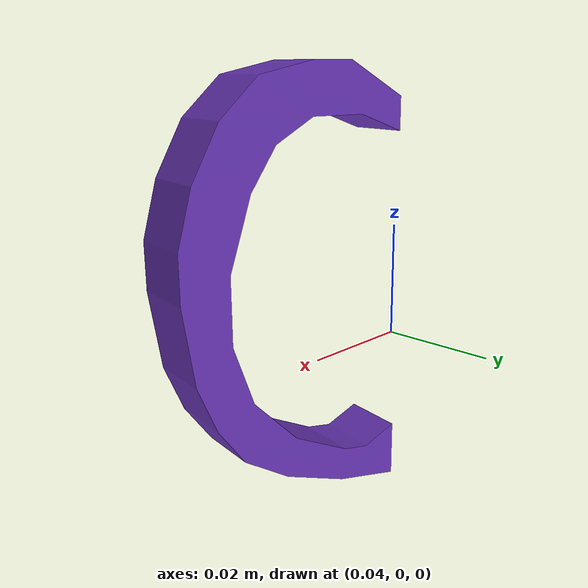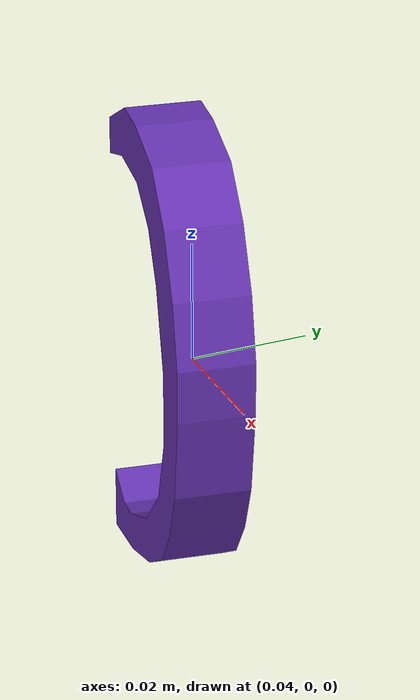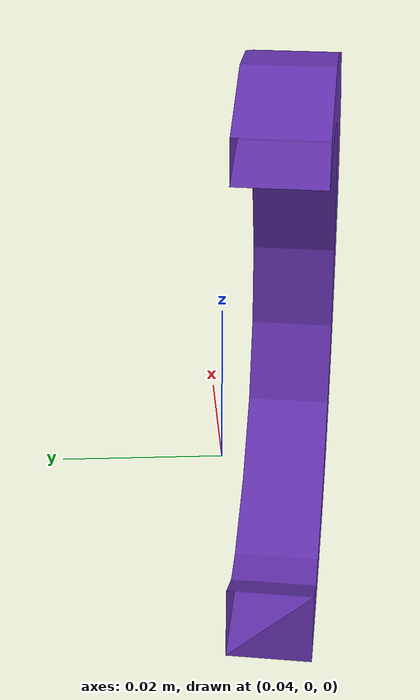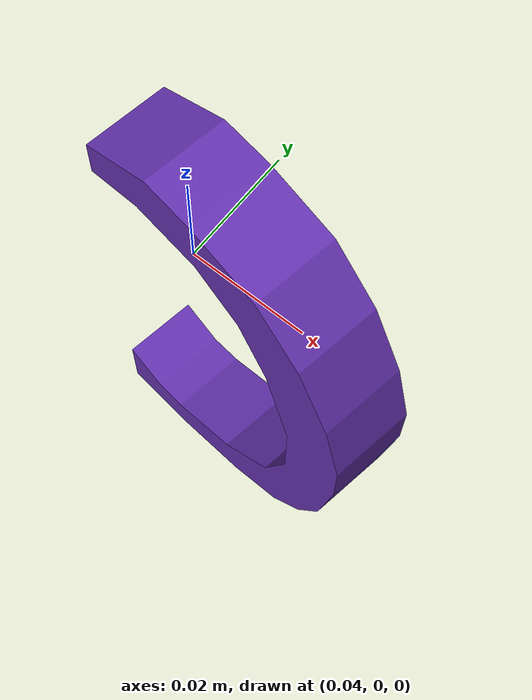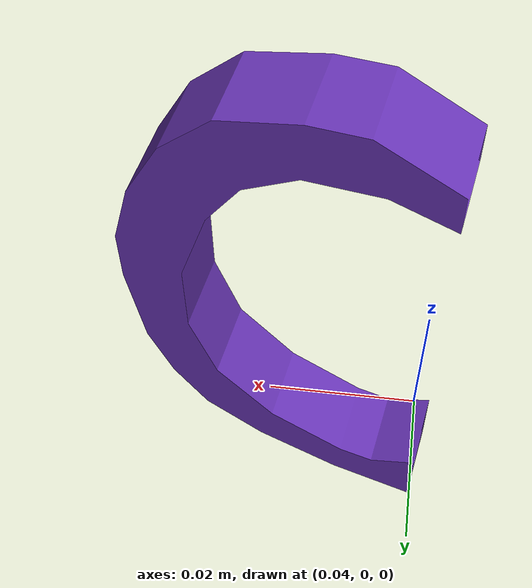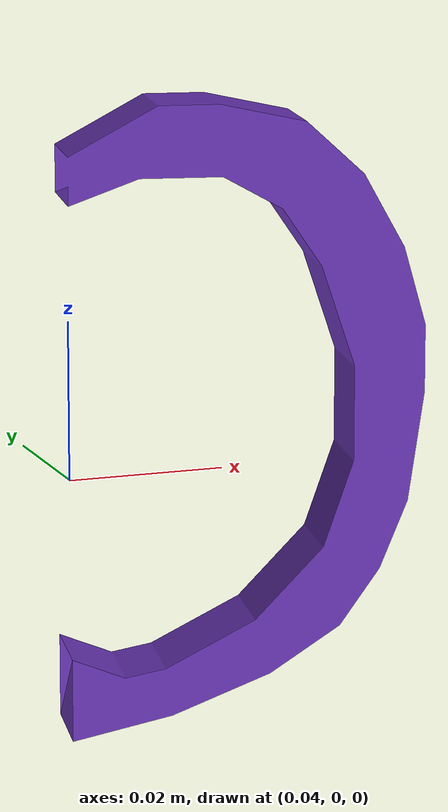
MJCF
<mujoco model="top_watertight_tiny">
  <default>
    <default group="2" type="mesh" contype="0" conaffinity="0">
      <geom group="2" type="mesh" contype="0" conaffinity="0"/>
    </default>
    <default group="3" type="mesh">
      <geom group="3" type="mesh"/>
    </default>
  </default>
  <asset>
    <mesh file="top_watertight_tiny.obj"/>
    <mesh file="top_watertight_tiny_collision_0.obj"/>
    <mesh file="top_watertight_tiny_collision_1.obj"/>
    <mesh file="top_watertight_tiny_collision_2.obj"/>
    <mesh file="top_watertight_tiny_collision_3.obj"/>
    <mesh file="top_watertight_tiny_collision_4.obj"/>
    <mesh file="top_watertight_tiny_collision_5.obj"/>
    <mesh file="top_watertight_tiny_collision_6.obj"/>
    <mesh file="top_watertight_tiny_collision_7.obj"/>
    <mesh file="top_watertight_tiny_collision_8.obj"/>
    <mesh file="top_watertight_tiny_collision_9.obj"/>
    <mesh file="top_watertight_tiny_collision_10.obj"/>
    <mesh file="top_watertight_tiny_collision_11.obj"/>
    <mesh file="top_watertight_tiny_collision_12.obj"/>
    <mesh file="top_watertight_tiny_collision_13.obj"/>
    <mesh file="top_watertight_tiny_collision_14.obj"/>
    <mesh file="top_watertight_tiny_collision_15.obj"/>
    <mesh file="top_watertight_tiny_collision_16.obj"/>
    <mesh file="top_watertight_tiny_collision_17.obj"/>
    <mesh file="top_watertight_tiny_collision_18.obj"/>
    <mesh file="top_watertight_tiny_collision_19.obj"/>
    <mesh file="top_watertight_tiny_collision_20.obj"/>
    <mesh file="top_watertight_tiny_collision_21.obj"/>
    <mesh file="top_watertight_tiny_collision_22.obj"/>
    <mesh file="top_watertight_tiny_collision_23.obj"/>
    <mesh file="top_watertight_tiny_collision_24.obj"/>
    <mesh file="top_watertight_tiny_collision_25.obj"/>
    <mesh file="top_watertight_tiny_collision_26.obj"/>
    <mesh file="top_watertight_tiny_collision_27.obj"/>
    <mesh file="top_watertight_tiny_collision_28.obj"/>
    <mesh file="top_watertight_tiny_collision_29.obj"/>
    <mesh file="top_watertight_tiny_collision_30.obj"/>
    <mesh file="top_watertight_tiny_collision_31.obj"/>
    <mesh file="top_watertight_tiny_collision_32.obj"/>
    <mesh file="top_watertight_tiny_collision_33.obj"/>
    <mesh file="top_watertight_tiny_collision_34.obj"/>
    <mesh file="top_watertight_tiny_collision_35.obj"/>
    <mesh file="top_watertight_tiny_collision_36.obj"/>
    <mesh file="top_watertight_tiny_collision_37.obj"/>
    <mesh file="top_watertight_tiny_collision_38.obj"/>
    <mesh file="top_watertight_tiny_collision_39.obj"/>
    <mesh file="top_watertight_tiny_collision_40.obj"/>
    <mesh file="top_watertight_tiny_collision_41.obj"/>
    <mesh file="top_watertight_tiny_collision_42.obj"/>
    <mesh file="top_watertight_tiny_collision_43.obj"/>
    <mesh file="top_watertight_tiny_collision_44.obj"/>
    <mesh file="top_watertight_tiny_collision_45.obj"/>
    <mesh file="top_watertight_tiny_collision_46.obj"/>
    <mesh file="top_watertight_tiny_collision_47.obj"/>
    <mesh file="top_watertight_tiny_collision_48.obj"/>
    <mesh file="top_watertight_tiny_collision_49.obj"/>
    <mesh file="top_watertight_tiny_collision_50.obj"/>
    <mesh file="top_watertight_tiny_collision_51.obj"/>
    <mesh file="top_watertight_tiny_collision_52.obj"/>
    <mesh file="top_watertight_tiny_collision_53.obj"/>
    <mesh file="top_watertight_tiny_collision_54.obj"/>
    <mesh file="top_watertight_tiny_collision_55.obj"/>
    <mesh file="top_watertight_tiny_collision_56.obj"/>
    <mesh file="top_watertight_tiny_collision_57.obj"/>
    <mesh file="top_watertight_tiny_collision_58.obj"/>
    <mesh file="top_watertight_tiny_collision_59.obj"/>
    <mesh file="top_watertight_tiny_collision_60.obj"/>
    <mesh file="top_watertight_tiny_collision_61.obj"/>
    <mesh file="top_watertight_tiny_collision_62.obj"/>
    <mesh file="top_watertight_tiny_collision_63.obj"/>
    <mesh file="top_watertight_tiny_collision_64.obj"/>
    <mesh file="top_watertight_tiny_collision_65.obj"/>
    <mesh file="top_watertight_tiny_collision_66.obj"/>
    <mesh file="top_watertight_tiny_collision_67.obj"/>
    <mesh file="top_watertight_tiny_collision_68.obj"/>
    <mesh file="top_watertight_tiny_collision_69.obj"/>
    <mesh file="top_watertight_tiny_collision_70.obj"/>
    <mesh file="top_watertight_tiny_collision_71.obj"/>
    <mesh file="top_watertight_tiny_collision_72.obj"/>
    <mesh file="top_watertight_tiny_collision_73.obj"/>
    <mesh file="top_watertight_tiny_collision_74.obj"/>
  </asset>
  <worldbody>
    <body name="top_watertight_tiny">
      <freejoint/>
      <geom mesh="top_watertight_tiny" group="2" type="mesh" rgba="0.4 0.2 0.7 1" contype="0" conaffinity="0"/>
      <geom mesh="top_watertight_tiny_collision_0" rgba="0.3919542809286014 0.33766176132084236 0.6101253547378767 1" group="3" type="mesh"/>
      <geom mesh="top_watertight_tiny_collision_1" rgba="0.009675265050078319 0.4080541806869692 0.12914366905516783 1" group="3" type="mesh"/>
      <geom mesh="top_watertight_tiny_collision_2" rgba="0.5695169627863276 0.27286326130004834 0.49575011100315025 1" group="3" type="mesh"/>
      <geom mesh="top_watertight_tiny_collision_3" rgba="0.3430438197780107 0.22466993840039218 0.1984683940436892 1" group="3" type="mesh"/>
      <geom mesh="top_watertight_tiny_collision_4" rgba="0.09234592759558913 0.5708819599759194 0.7753755785992633 1" group="3" type="mesh"/>
      <geom mesh="top_watertight_tiny_collision_5" rgba="0.8805010474172906 0.9488384193659842 0.25009421404208765 1" group="3" type="mesh"/>
      <geom mesh="top_watertight_tiny_collision_6" rgba="0.29108545283713805 0.06467223712559589 0.7679915165958194 1" group="3" type="mesh"/>
      <geom mesh="top_watertight_tiny_collision_7" rgba="0.4787859104694496 0.049628436475867566 0.3357750892839746 1" group="3" type="mesh"/>
      <geom mesh="top_watertight_tiny_collision_8" rgba="0.8267939298536675 0.31840859222576146 0.36066606521623523 1" group="3" type="mesh"/>
      <geom mesh="top_watertight_tiny_collision_9" rgba="0.894199596777209 0.5504527527574182 0.11710961455976299 1" group="3" type="mesh"/>
      <geom mesh="top_watertight_tiny_collision_10" rgba="0.5868509386243852 0.20986855372386515 0.7617356169559211 1" group="3" type="mesh"/>
      <geom mesh="top_watertight_tiny_collision_11" rgba="0.3678905068441838 0.5791459085475805 0.17610640526762045 1" group="3" type="mesh"/>
      <geom mesh="top_watertight_tiny_collision_12" rgba="0.9301543992117014 0.10909862789668168 0.10670301401158899 1" group="3" type="mesh"/>
      <geom mesh="top_watertight_tiny_collision_13" rgba="0.8335509473149793 0.17550008753826696 0.025208866225087112 1" group="3" type="mesh"/>
      <geom mesh="top_watertight_tiny_collision_14" rgba="0.9395385856664701 0.5599445848534931 0.2753973873095057 1" group="3" type="mesh"/>
      <geom mesh="top_watertight_tiny_collision_15" rgba="0.8530769919882758 0.8451222408741156 0.6304560950700017 1" group="3" type="mesh"/>
      <geom mesh="top_watertight_tiny_collision_16" rgba="0.5613258910652602 0.45882914999835755 0.2793698957737065 1" group="3" type="mesh"/>
      <geom mesh="top_watertight_tiny_collision_17" rgba="0.5272662398519375 0.23637045025508596 0.34357780505028357 1" group="3" type="mesh"/>
      <geom mesh="top_watertight_tiny_collision_18" rgba="0.06219469546392764 0.7062734363168404 0.023954540552283632 1" group="3" type="mesh"/>
      <geom mesh="top_watertight_tiny_collision_19" rgba="0.35202056849698005 0.08334786376848546 0.14281187165767106 1" group="3" type="mesh"/>
      <geom mesh="top_watertight_tiny_collision_20" rgba="0.2767286122624687 0.650353425315472 0.6920893640982593 1" group="3" type="mesh"/>
      <geom mesh="top_watertight_tiny_collision_21" rgba="0.7169140028731372 0.9995759486926231 0.12582050967569913 1" group="3" type="mesh"/>
      <geom mesh="top_watertight_tiny_collision_22" rgba="0.5960946570913178 0.21760627360956109 0.681012814581335 1" group="3" type="mesh"/>
      <geom mesh="top_watertight_tiny_collision_23" rgba="0.017080391527134142 0.6083316404524989 0.21850727427276495 1" group="3" type="mesh"/>
      <geom mesh="top_watertight_tiny_collision_24" rgba="0.6518561191818929 0.028709003810871492 0.30334715037861637 1" group="3" type="mesh"/>
      <geom mesh="top_watertight_tiny_collision_25" rgba="0.9500840859739423 0.9057155679177131 0.8408542982085778 1" group="3" type="mesh"/>
      <geom mesh="top_watertight_tiny_collision_26" rgba="0.36454094845854 0.9867163394099921 0.13077678356314448 1" group="3" type="mesh"/>
      <geom mesh="top_watertight_tiny_collision_27" rgba="0.6924051605855522 0.9301853789858004 0.9422684022916219 1" group="3" type="mesh"/>
      <geom mesh="top_watertight_tiny_collision_28" rgba="0.3792055845471284 0.8820767780894447 0.3881970996967937 1" group="3" type="mesh"/>
      <geom mesh="top_watertight_tiny_collision_29" rgba="0.9615612844498247 0.42720029465962595 0.04719996601002174 1" group="3" type="mesh"/>
      <geom mesh="top_watertight_tiny_collision_30" rgba="0.0832540163994897 0.281664449858253 0.28784817114830374 1" group="3" type="mesh"/>
      <geom mesh="top_watertight_tiny_collision_31" rgba="0.3087338241858595 0.26361206336712983 0.3722488227752554 1" group="3" type="mesh"/>
      <geom mesh="top_watertight_tiny_collision_32" rgba="0.14282833378720827 0.8363504880012563 0.8297676228431364 1" group="3" type="mesh"/>
      <geom mesh="top_watertight_tiny_collision_33" rgba="0.02454431720786676 0.7560658110740959 0.4115498506779903 1" group="3" type="mesh"/>
      <geom mesh="top_watertight_tiny_collision_34" rgba="0.33198203635880597 0.8160150103898857 0.06803121523948974 1" group="3" type="mesh"/>
      <geom mesh="top_watertight_tiny_collision_35" rgba="0.16042593995564025 0.05788960513435215 0.41051166494019387 1" group="3" type="mesh"/>
      <geom mesh="top_watertight_tiny_collision_36" rgba="0.30042718337092555 0.5533294455637431 0.9385795643943569 1" group="3" type="mesh"/>
      <geom mesh="top_watertight_tiny_collision_37" rgba="0.8428653400254756 0.41146890020940285 0.9946003651498975 1" group="3" type="mesh"/>
      <geom mesh="top_watertight_tiny_collision_38" rgba="0.4630489409659496 0.5601276315200703 0.5878687356737293 1" group="3" type="mesh"/>
      <geom mesh="top_watertight_tiny_collision_39" rgba="0.7412250873502351 0.013972965268557735 0.04244781657689167 1" group="3" type="mesh"/>
      <geom mesh="top_watertight_tiny_collision_40" rgba="0.9106330903748439 0.15851531059834734 0.49717989739105584 1" group="3" type="mesh"/>
      <geom mesh="top_watertight_tiny_collision_41" rgba="0.09397482306633165 0.7754171130714241 0.399438341253206 1" group="3" type="mesh"/>
      <geom mesh="top_watertight_tiny_collision_42" rgba="0.8484830137781723 0.22468416181203243 0.4900291884940714 1" group="3" type="mesh"/>
      <geom mesh="top_watertight_tiny_collision_43" rgba="0.7032641744937037 0.7629147146657931 0.6642370771243394 1" group="3" type="mesh"/>
      <geom mesh="top_watertight_tiny_collision_44" rgba="0.9745488240529014 0.46985746588928534 0.8824757853968976 1" group="3" type="mesh"/>
      <geom mesh="top_watertight_tiny_collision_45" rgba="0.18942158843857881 0.8833262024222952 0.765810167434738 1" group="3" type="mesh"/>
      <geom mesh="top_watertight_tiny_collision_46" rgba="0.029714259703401025 0.8152959847213447 0.4420610979169258 1" group="3" type="mesh"/>
      <geom mesh="top_watertight_tiny_collision_47" rgba="0.6635034865001267 0.2736853835481978 0.6243715773480459 1" group="3" type="mesh"/>
      <geom mesh="top_watertight_tiny_collision_48" rgba="0.8111907892325716 0.3859457842516616 0.8166511547434933 1" group="3" type="mesh"/>
      <geom mesh="top_watertight_tiny_collision_49" rgba="0.5430999693801868 0.9937634351072571 0.4262671151446582 1" group="3" type="mesh"/>
      <geom mesh="top_watertight_tiny_collision_50" rgba="0.6486770702147696 0.8918415454302568 0.4385697014738107 1" group="3" type="mesh"/>
      <geom mesh="top_watertight_tiny_collision_51" rgba="0.45922543068067256 0.029377369617975324 0.5292069199703783 1" group="3" type="mesh"/>
      <geom mesh="top_watertight_tiny_collision_52" rgba="0.47652113055283063 0.5696959070296884 0.131763471234975 1" group="3" type="mesh"/>
      <geom mesh="top_watertight_tiny_collision_53" rgba="0.9247030759261631 0.34426536791733353 0.3838799295313029 1" group="3" type="mesh"/>
      <geom mesh="top_watertight_tiny_collision_54" rgba="0.588029360516782 0.24130007800036168 0.8847538377028364 1" group="3" type="mesh"/>
      <geom mesh="top_watertight_tiny_collision_55" rgba="0.6140439077335907 0.3736586343410965 0.23369980336227603 1" group="3" type="mesh"/>
      <geom mesh="top_watertight_tiny_collision_56" rgba="0.375579542187528 0.8344407522341951 0.999977326433484 1" group="3" type="mesh"/>
      <geom mesh="top_watertight_tiny_collision_57" rgba="0.6841770480482772 0.8425171748462127 0.05231073408496967 1" group="3" type="mesh"/>
      <geom mesh="top_watertight_tiny_collision_58" rgba="0.07010075766501411 0.975878050484173 0.819399674498412 1" group="3" type="mesh"/>
      <geom mesh="top_watertight_tiny_collision_59" rgba="0.8266140550343901 0.40514944749153425 0.8016716677286333 1" group="3" type="mesh"/>
      <geom mesh="top_watertight_tiny_collision_60" rgba="0.6014726649231217 0.19266667159356188 0.9275051883890439 1" group="3" type="mesh"/>
      <geom mesh="top_watertight_tiny_collision_61" rgba="0.9955748189444327 0.5194530350676244 0.2192086336540865 1" group="3" type="mesh"/>
      <geom mesh="top_watertight_tiny_collision_62" rgba="0.08598419260770385 0.9321971490226447 0.43606585628772 1" group="3" type="mesh"/>
      <geom mesh="top_watertight_tiny_collision_63" rgba="0.6650190168571781 0.5692840694413954 0.2200528729616339 1" group="3" type="mesh"/>
      <geom mesh="top_watertight_tiny_collision_64" rgba="0.22501875761796064 0.6934524475241554 0.014665925466734953 1" group="3" type="mesh"/>
      <geom mesh="top_watertight_tiny_collision_65" rgba="0.2560418778895871 0.5846562019020468 0.9267552190738796 1" group="3" type="mesh"/>
      <geom mesh="top_watertight_tiny_collision_66" rgba="0.5789086539864581 0.34724123589451916 0.723954409886515 1" group="3" type="mesh"/>
      <geom mesh="top_watertight_tiny_collision_67" rgba="0.7383399725868115 0.546677838072281 0.5681371167562868 1" group="3" type="mesh"/>
      <geom mesh="top_watertight_tiny_collision_68" rgba="0.4192506159124909 0.8934610715413878 0.6026415825708917 1" group="3" type="mesh"/>
      <geom mesh="top_watertight_tiny_collision_69" rgba="0.25872196737241804 0.13073161246321896 0.6961876790683182 1" group="3" type="mesh"/>
      <geom mesh="top_watertight_tiny_collision_70" rgba="0.16222485253473118 0.9482598265947471 0.13518506511483075 1" group="3" type="mesh"/>
      <geom mesh="top_watertight_tiny_collision_71" rgba="0.5616976651228155 0.4388902025160375 0.14493992069136086 1" group="3" type="mesh"/>
      <geom mesh="top_watertight_tiny_collision_72" rgba="0.09768603209230842 0.21257050683426426 0.42677823506001755 1" group="3" type="mesh"/>
      <geom mesh="top_watertight_tiny_collision_73" rgba="0.3635368625579324 0.10712872532142037 0.9090652282994426 1" group="3" type="mesh"/>
      <geom mesh="top_watertight_tiny_collision_74" rgba="0.1912435579243491 0.8739542148418369 0.15353377104725874 1" group="3" type="mesh"/>
    </body>
  </worldbody>
</mujoco>
